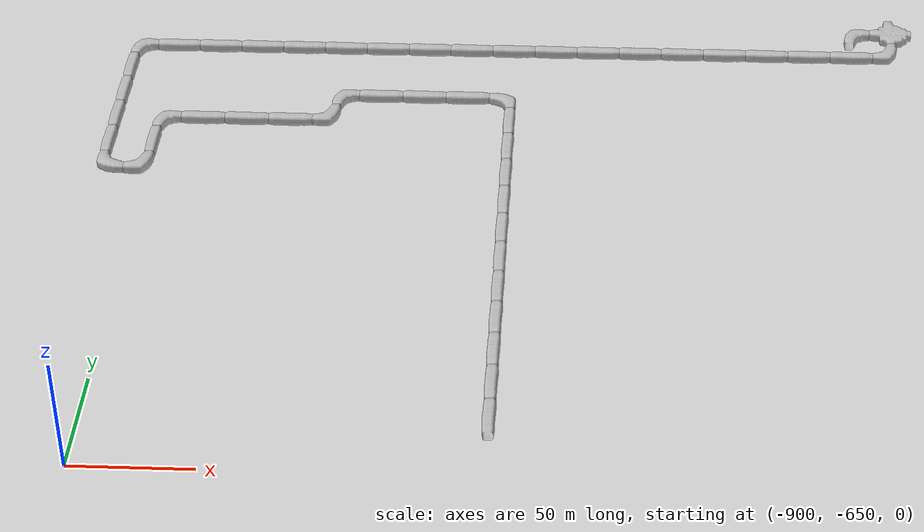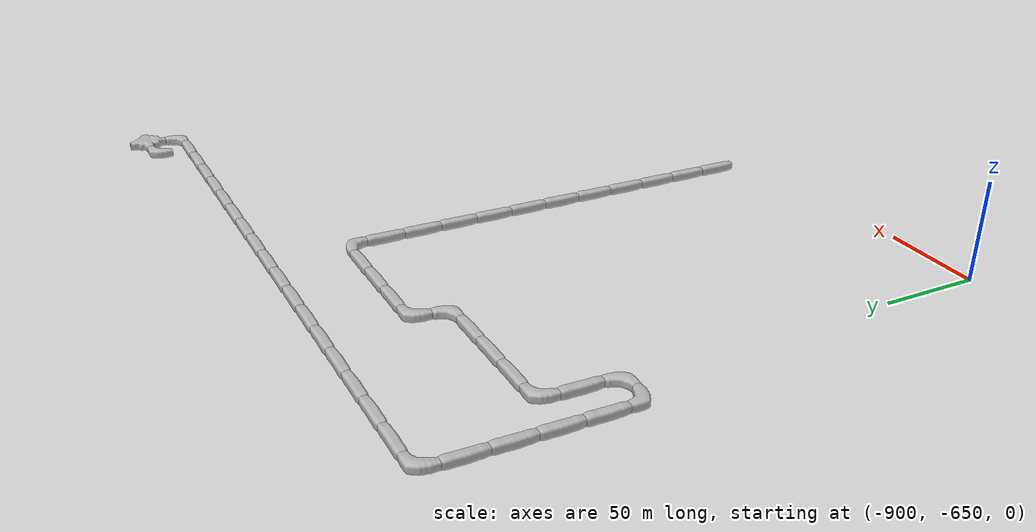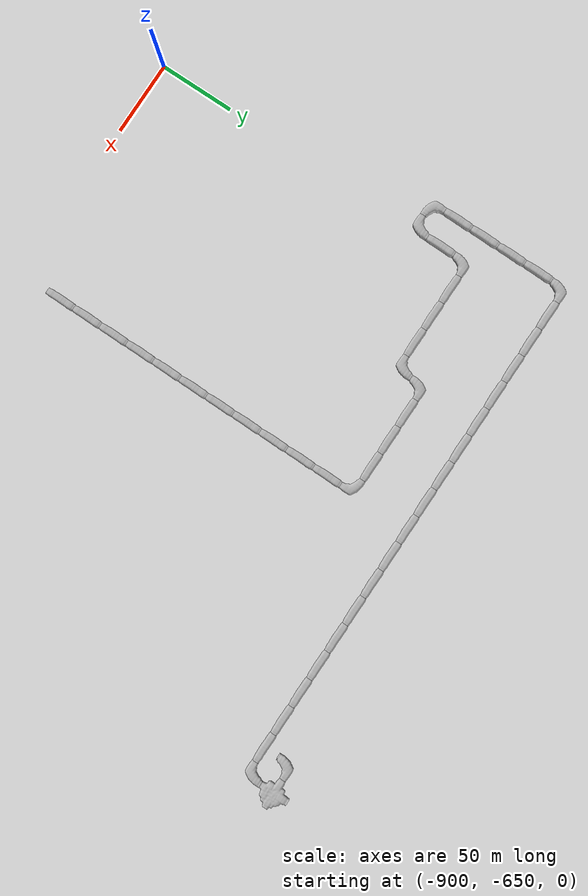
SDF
<sdf version="1.6">
 <world name="cave_8000_0">
  <include>
   <static>true</static>
   <name>cave_-28_-17</name>
   <pose>-560 -340 0 0 0 -1.5707963267948966</pose>
   <uri>model://cave_4way_20m</uri>
  </include>
  <include>
   <static>true</static>
   <name>cave_-28_-18</name>
   <pose>-560 -360 0 0 0 1.5707963267948966</pose>
   <uri>model://cave_L_20m</uri>
  </include>
  <include>
   <static>true</static>
   <name>cave_-29_-18</name>
   <pose>-580 -360 0 0 0 1.5707963267948966</pose>
   <uri>model://cave_straight_20m</uri>
  </include>
  <include>
   <static>true</static>
   <name>cave_-30_-18</name>
   <pose>-600 -360 0 0 0 1.5707963267948966</pose>
   <uri>model://cave_straight_20m</uri>
  </include>
  <include>
   <static>true</static>
   <name>cave_-31_-18</name>
   <pose>-620 -360 0 0 0 1.5707963267948966</pose>
   <uri>model://cave_straight_20m</uri>
  </include>
  <include>
   <static>true</static>
   <name>cave_-32_-18</name>
   <pose>-640 -360 0 0 0 1.5707963267948966</pose>
   <uri>model://cave_straight_20m</uri>
  </include>
  <include>
   <static>true</static>
   <name>cave_-33_-18</name>
   <pose>-660 -360 0 0 0 1.5707963267948966</pose>
   <uri>model://cave_straight_20m</uri>
  </include>
  <include>
   <static>true</static>
   <name>cave_-34_-18</name>
   <pose>-680 -360 0 0 0 1.5707963267948966</pose>
   <uri>model://cave_straight_20m</uri>
  </include>
  <include>
   <static>true</static>
   <name>cave_-35_-18</name>
   <pose>-700 -360 0 0 0 1.5707963267948966</pose>
   <uri>model://cave_straight_20m</uri>
  </include>
  <include>
   <static>true</static>
   <name>cave_-36_-18</name>
   <pose>-720 -360 0 0 0 1.5707963267948966</pose>
   <uri>model://cave_straight_20m</uri>
  </include>
  <include>
   <static>true</static>
   <name>cave_-37_-18</name>
   <pose>-740 -360 0 0 0 1.5707963267948966</pose>
   <uri>model://cave_straight_20m</uri>
  </include>
  <include>
   <static>true</static>
   <name>cave_-38_-18</name>
   <pose>-760 -360 0 0 0 1.5707963267948966</pose>
   <uri>model://cave_straight_20m</uri>
  </include>
  <include>
   <static>true</static>
   <name>cave_-39_-18</name>
   <pose>-780 -360 0 0 0 1.5707963267948966</pose>
   <uri>model://cave_straight_20m</uri>
  </include>
  <include>
   <static>true</static>
   <name>cave_-40_-18</name>
   <pose>-800 -360 0 0 0 1.5707963267948966</pose>
   <uri>model://cave_straight_20m</uri>
  </include>
  <include>
   <static>true</static>
   <name>cave_-41_-18</name>
   <pose>-820 -360 0 0 0 1.5707963267948966</pose>
   <uri>model://cave_straight_20m</uri>
  </include>
  <include>
   <static>true</static>
   <name>cave_-42_-18</name>
   <pose>-840 -360 0 0 0 1.5707963267948966</pose>
   <uri>model://cave_straight_20m</uri>
  </include>
  <include>
   <static>true</static>
   <name>cave_-43_-18</name>
   <pose>-860 -360 0 0 0 1.5707963267948966</pose>
   <uri>model://cave_straight_20m</uri>
  </include>
  <include>
   <static>true</static>
   <name>cave_-44_-18</name>
   <pose>-880 -360 0 0 0 1.5707963267948966</pose>
   <uri>model://cave_straight_20m</uri>
  </include>
  <include>
   <static>true</static>
   <name>cave_-45_-18</name>
   <pose>-900 -360 0 0 0 1.5707963267948966</pose>
   <uri>model://cave_straight_20m</uri>
  </include>
  <include>
   <static>true</static>
   <name>cave_-46_-18</name>
   <pose>-920 -360 0 0 0 -1.5707963267948966</pose>
   <uri>model://cave_L_20m</uri>
  </include>
  <include>
   <static>true</static>
   <name>cave_-46_-19</name>
   <pose>-920 -380 0 0 0 0.0</pose>
   <uri>model://cave_straight_20m</uri>
  </include>
  <include>
   <static>true</static>
   <name>cave_-46_-20</name>
   <pose>-920 -400 0 0 0 0.0</pose>
   <uri>model://cave_straight_20m</uri>
  </include>
  <include>
   <static>true</static>
   <name>cave_-46_-21</name>
   <pose>-920 -420 0 0 0 0.0</pose>
   <uri>model://cave_straight_20m</uri>
  </include>
  <include>
   <static>true</static>
   <name>cave_-46_-22</name>
   <pose>-920 -440 0 0 0 0.0</pose>
   <uri>model://cave_straight_20m</uri>
  </include>
  <include>
   <static>true</static>
   <name>cave_-46_-23</name>
   <pose>-920 -460 0 0 0 0.0</pose>
   <uri>model://cave_L_20m</uri>
  </include>
  <include>
   <static>true</static>
   <name>cave_-45_-23</name>
   <pose>-900 -460 0 0 0 1.5707963267948966</pose>
   <uri>model://cave_L_20m</uri>
  </include>
  <include>
   <static>true</static>
   <name>cave_-45_-22</name>
   <pose>-900 -440 0 0 0 0.0</pose>
   <uri>model://cave_straight_20m</uri>
  </include>
  <include>
   <static>true</static>
   <name>cave_-45_-21</name>
   <pose>-900 -420 0 0 0 -1.5707963267948966</pose>
   <uri>model://cave_L_20m</uri>
  </include>
  <include>
   <static>true</static>
   <name>cave_-44_-21</name>
   <pose>-880 -420 0 0 0 1.5707963267948966</pose>
   <uri>model://cave_straight_20m</uri>
  </include>
  <include>
   <static>true</static>
   <name>cave_-43_-21</name>
   <pose>-860 -420 0 0 0 1.5707963267948966</pose>
   <uri>model://cave_straight_20m</uri>
  </include>
  <include>
   <static>true</static>
   <name>cave_-42_-21</name>
   <pose>-840 -420 0 0 0 1.5707963267948966</pose>
   <uri>model://cave_straight_20m</uri>
  </include>
  <include>
   <static>true</static>
   <name>cave_-41_-21</name>
   <pose>-820 -420 0 0 0 1.5707963267948966</pose>
   <uri>model://cave_L_20m</uri>
  </include>
  <include>
   <static>true</static>
   <name>cave_-41_-20</name>
   <pose>-820 -400 0 0 0 -1.5707963267948966</pose>
   <uri>model://cave_L_20m</uri>
  </include>
  <include>
   <static>true</static>
   <name>cave_-40_-20</name>
   <pose>-800 -400 0 0 0 1.5707963267948966</pose>
   <uri>model://cave_straight_20m</uri>
  </include>
  <include>
   <static>true</static>
   <name>cave_-39_-20</name>
   <pose>-780 -400 0 0 0 1.5707963267948966</pose>
   <uri>model://cave_straight_20m</uri>
  </include>
  <include>
   <static>true</static>
   <name>cave_-38_-20</name>
   <pose>-760 -400 0 0 0 1.5707963267948966</pose>
   <uri>model://cave_straight_20m</uri>
  </include>
  <include>
   <static>true</static>
   <name>cave_-37_-20</name>
   <pose>-740 -400 0 0 0 3.141592653589793</pose>
   <uri>model://cave_L_20m</uri>
  </include>
  <include>
   <static>true</static>
   <name>cave_-37_-21</name>
   <pose>-740 -420 0 0 0 0.0</pose>
   <uri>model://cave_straight_20m</uri>
  </include>
  <include>
   <static>true</static>
   <name>cave_-37_-22</name>
   <pose>-740 -440 0 0 0 0.0</pose>
   <uri>model://cave_straight_20m</uri>
  </include>
  <include>
   <static>true</static>
   <name>cave_-37_-23</name>
   <pose>-740 -460 0 0 0 0.0</pose>
   <uri>model://cave_straight_20m</uri>
  </include>
  <include>
   <static>true</static>
   <name>cave_-37_-24</name>
   <pose>-740 -480 0 0 0 0.0</pose>
   <uri>model://cave_straight_20m</uri>
  </include>
  <include>
   <static>true</static>
   <name>cave_-37_-25</name>
   <pose>-740 -500 0 0 0 0.0</pose>
   <uri>model://cave_straight_20m</uri>
  </include>
  <include>
   <static>true</static>
   <name>cave_-37_-26</name>
   <pose>-740 -520 0 0 0 0.0</pose>
   <uri>model://cave_straight_20m</uri>
  </include>
  <include>
   <static>true</static>
   <name>cave_-37_-27</name>
   <pose>-740 -540 0 0 0 0.0</pose>
   <uri>model://cave_straight_20m</uri>
  </include>
  <include>
   <static>true</static>
   <name>cave_-37_-28</name>
   <pose>-740 -560 0 0 0 0.0</pose>
   <uri>model://cave_straight_20m</uri>
  </include>
  <include>
   <static>true</static>
   <name>cave_-37_-29</name>
   <pose>-740 -580 0 0 0 0.0</pose>
   <uri>model://cave_straight_20m</uri>
  </include>
  <include>
   <static>true</static>
   <name>cave_-37_-30</name>
   <pose>-740 -600 0 0 0 0.0</pose>
   <uri>model://cave_straight_20m</uri>
  </include>
  <include>
   <static>true</static>
   <name>cave_-37_-31</name>
   <pose>-740 -620 0 0 0 0.0</pose>
   <uri>model://cave_straight_20m</uri>
  </include>
  <include>
   <static>true</static>
   <name>cave_-29_-17</name>
   <pose>-580 -340 0 0 0 -1.5707963267948966</pose>
   <uri>model://cave_L_20m</uri>
  </include>
 </world>
</sdf>
